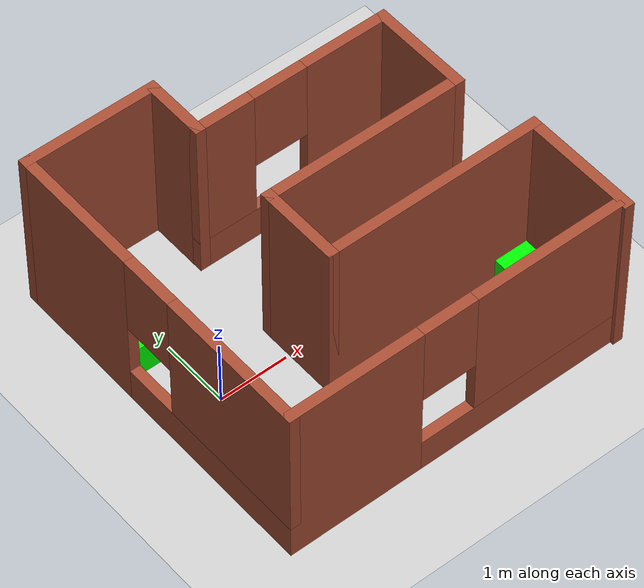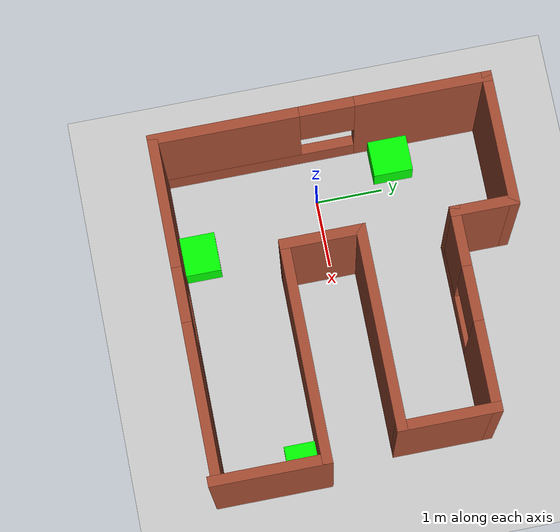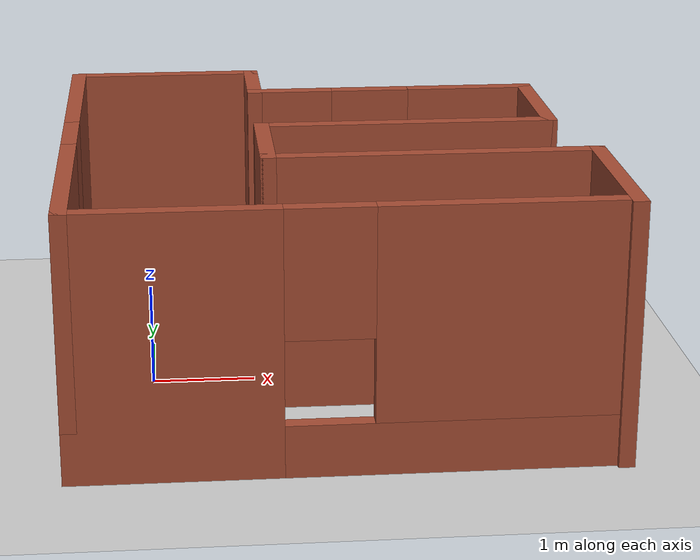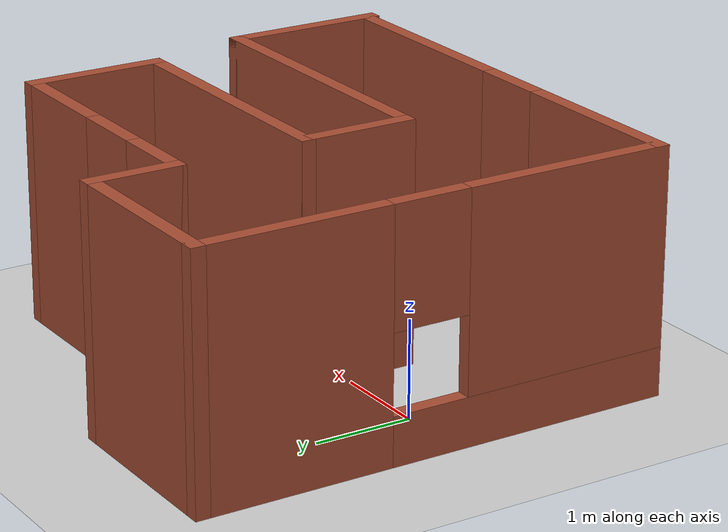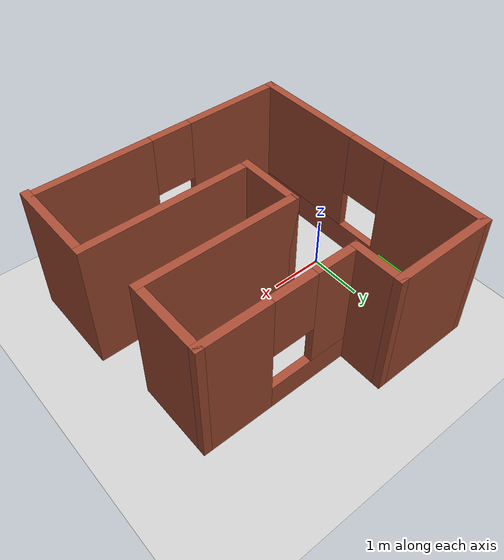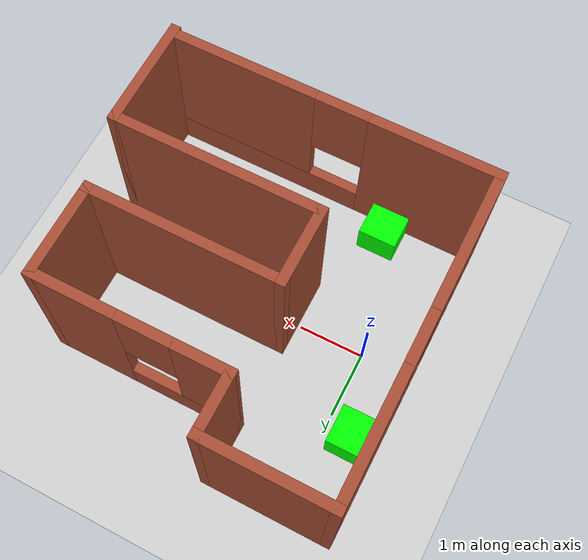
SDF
<sdf version="1.6">
 <world name="default">
  <light name="sun" type="directional">
   <pose>0 0 10 0 -0 0</pose>
   <diffuse>0.8 0.8 0.8 1</diffuse>
   <specular>0.2 0.2 0.2 1</specular>
   <attenuation>
    <range>1000</range>
    <constant>0.9</constant>
    <linear>0.01</linear>
    <quadratic>0.001</quadratic>
   </attenuation>
   <direction>-0.5 0.1 -0.9</direction>
   <spot><inner_angle>0</inner_angle><outer_angle>0</outer_angle><falloff>0</falloff></spot>
  </light>
  <model name="ground_plane">
   <static>1</static>
   <link name="link">
    <collision name="collision">
     <geometry><plane><normal>0 0 1</normal><size>100 100</size></plane></geometry>
     <surface><friction><ode><mu>100</mu><mu2>50</mu2></ode></friction></surface>
    </collision>
    <visual name="visual">
     <cast_shadows>0</cast_shadows>
     <geometry><plane><normal>0 0 1</normal><size>100 100</size></plane></geometry>
     <material>
      <script><uri>file://media/materials/scripts/gazebo.material</uri><name>Gazebo/Grey</name></script>
     </material>
    </visual>
   </link>
  </model>
  <gravity>0 0 -9.8</gravity>
  <magnetic_field>6e-06 2.3e-05 -4.2e-05</magnetic_field>
  <atmosphere type="adiabatic"/>
  <physics type="ode">
   <max_step_size>0.001</max_step_size>
   <real_time_factor>1</real_time_factor>
   <real_time_update_rate>1000</real_time_update_rate>
  </physics>
  <scene><ambient>0.4 0.4 0.4 1</ambient><background>0.7 0.7 0.7 1</background><shadows>1</shadows></scene>
  <audio><device>default</device></audio>
  <spherical_coordinates>
   <surface_model>EARTH_WGS84</surface_model>
   <latitude_deg>0</latitude_deg>
   <longitude_deg>0</longitude_deg>
   <elevation>0</elevation>
   <heading_deg>0</heading_deg>
  </spherical_coordinates>
  <model name="wall_path">
   <pose>1.74926 0.815969 0 0 -0 0</pose>
   <link name="Wall_0">
    <collision name="Wall_0_Collision">
     <geometry><box><size>3 0.15 2.5</size></box></geometry>
     <pose>0 0 1.25 0 -0 0</pose>
    </collision>
    <visual name="Wall_0_Visual">
     <pose>0 0 1.25 0 -0 0</pose>
     <geometry><box><size>3 0.15 2.5</size></box></geometry>
     <material>
      <script><uri>file://media/materials/scripts/gazebo.material</uri><name>Gazebo/Bricks</name></script>
      <ambient>1 1 1 1</ambient>
     </material>
     <meta><layer>0</layer></meta>
    </visual>
    <pose>0.8 -0.3875 0 0 -0 0</pose>
   </link>
   <link name="Wall_1">
    <collision name="Wall_1_Collision">
     <geometry><box><size>1.5 0.15 2.5</size></box></geometry>
     <pose>0 0 1.25 0 -0 0</pose>
    </collision>
    <visual name="Wall_1_Visual">
     <pose>0 0 1.25 0 -0 0</pose>
     <geometry><box><size>1.5 0.15 2.5</size></box></geometry>
     <material>
      <script><uri>file://media/materials/scripts/gazebo.material</uri><name>Gazebo/Bricks</name></script>
      <ambient>1 1 1 1</ambient>
     </material>
     <meta><layer>0</layer></meta>
    </visual>
    <pose>2.225 0.2875 0 0 -0 1.5708</pose>
   </link>
   <link name="Wall_10">
    <collision name="Wall_10_Collision">
     <geometry><box><size>1.25 0.15 2.5</size></box></geometry>
     <pose>0 0 1.25 0 -0 0</pose>
    </collision>
    <visual name="Wall_10_Visual">
     <pose>0 0 1.25 0 -0 0</pose>
     <geometry><box><size>1.25 0.15 2.5</size></box></geometry>
     <material>
      <script><uri>file://media/materials/scripts/gazebo.material</uri><name>Gazebo/Bricks</name></script>
      <ambient>1 1 1 1</ambient>
     </material>
     <meta><layer>0</layer></meta>
    </visual>
    <pose>-0.625 -0.9375 0 0 -0 -1.5708</pose>
   </link>
   <link name="Wall_11">
    <collision name="Wall_11_Collision">
     <geometry><box><size>3.25 0.15 2.5</size></box></geometry>
     <pose>0 0 1.25 0 -0 0</pose>
    </collision>
    <visual name="Wall_11_Visual">
     <pose>0 0 1.25 0 -0 0</pose>
     <geometry><box><size>3.25 0.15 2.5</size></box></geometry>
     <material>
      <script><uri>file://media/materials/scripts/gazebo.material</uri><name>Gazebo/Bricks</name></script>
      <ambient>1 1 1 1</ambient>
     </material>
     <meta><layer>0</layer></meta>
    </visual>
    <pose>0.925 -1.4875 0 0 -0 0</pose>
   </link>
   <link name="Wall_12">
    <collision name="Wall_12_Collision">
     <geometry><box><size>1.75 0.15 2.5</size></box></geometry>
     <pose>0 0 1.25 0 -0 0</pose>
    </collision>
    <visual name="Wall_12_Visual">
     <pose>0 0 1.25 0 -0 0</pose>
     <geometry><box><size>1.75 0.15 2.5</size></box></geometry>
     <material>
      <script><uri>file://media/materials/scripts/gazebo.material</uri><name>Gazebo/Bricks</name></script>
      <ambient>1 1 1 1</ambient>
     </material>
     <meta><layer>0</layer></meta>
    </visual>
    <pose>2.475 -2.2875 0 0 -0 -1.5708</pose>
   </link>
   <link name="Wall_2">
    <pose>0.8 0.9625 0 0 -0 3.14159</pose>
    <visual name="Wall_2_Visual_0">
     <pose>-0.840949 0 1.25 0 -0 0</pose>
     <geometry><box><size>1.3181 0.15 2.5</size></box></geometry>
     <material>
      <script><uri>file://media/materials/scripts/gazebo.material</uri><name>Gazebo/Bricks</name></script>
      <ambient>1 1 1 1</ambient>
     </material>
     <meta><layer>0</layer></meta>
    </visual>
    <collision name="Wall_2_Collision_0">
     <geometry><box><size>1.3181 0.15 2.5</size></box></geometry>
     <pose>-0.840949 0 1.25 0 -0 0</pose>
    </collision>
    <visual name="Wall_2_Visual_1">
     <pose>0.659051 0 0.25 0 -0 0</pose>
     <geometry><box><size>1.6819 0.15 0.5</size></box></geometry>
     <material>
      <script><uri>file://media/materials/scripts/gazebo.material</uri><name>Gazebo/Bricks</name></script>
      <ambient>1 1 1 1</ambient>
     </material>
     <meta><layer>0</layer></meta>
    </visual>
    <collision name="Wall_2_Collision_1">
     <geometry><box><size>1.6819 0.15 0.5</size></box></geometry>
     <pose>0.659051 0 0.25 0 -0 0</pose>
    </collision>
    <visual name="Wall_2_Visual_2">
     <pose>1.05905 0 1.5 0 -0 0</pose>
     <geometry><box><size>0.881897 0.15 2</size></box></geometry>
     <material>
      <script><uri>file://media/materials/scripts/gazebo.material</uri><name>Gazebo/Bricks</name></script>
      <ambient>1 1 1 1</ambient>
     </material>
     <meta><layer>0</layer></meta>
    </visual>
    <collision name="Wall_2_Collision_2">
     <geometry><box><size>0.881897 0.15 2</size></box></geometry>
     <pose>1.05905 0 1.5 0 -0 0</pose>
    </collision>
    <visual name="Wall_2_Visual_3">
     <pose>0.218103 0 1.9 0 -0 0</pose>
     <geometry><box><size>0.8 0.15 1.2</size></box></geometry>
     <material>
      <script><uri>file://media/materials/scripts/gazebo.material</uri><name>Gazebo/Bricks</name></script>
      <ambient>1 1 1 1</ambient>
     </material>
     <meta><layer>0</layer></meta>
    </visual>
    <collision name="Wall_2_Collision_3">
     <geometry><box><size>0.8 0.15 1.2</size></box></geometry>
     <pose>0.218103 0 1.9 0 -0 0</pose>
    </collision>
   </link>
   <link name="Wall_3">
    <collision name="Wall_3_Collision">
     <geometry><box><size>1 0.15 2.5</size></box></geometry>
     <pose>0 0 1.25 0 -0 0</pose>
    </collision>
    <visual name="Wall_3_Visual">
     <pose>0 0 1.25 0 -0 0</pose>
     <geometry><box><size>1 0.15 2.5</size></box></geometry>
     <material>
      <script><uri>file://media/materials/scripts/gazebo.material</uri><name>Gazebo/Bricks</name></script>
      <ambient>1 1 1 1</ambient>
     </material>
     <meta><layer>0</layer></meta>
    </visual>
    <pose>-0.625 1.3875 0 0 -0 1.5708</pose>
   </link>
   <link name="Wall_4">
    <collision name="Wall_4_Collision">
     <geometry><box><size>2 0.15 2.5</size></box></geometry>
     <pose>0 0 1.25 0 -0 0</pose>
    </collision>
    <visual name="Wall_4_Visual">
     <pose>0 0 1.25 0 -0 0</pose>
     <geometry><box><size>2 0.15 2.5</size></box></geometry>
     <material>
      <script><uri>file://media/materials/scripts/gazebo.material</uri><name>Gazebo/Bricks</name></script>
      <ambient>1 1 1 1</ambient>
     </material>
     <meta><layer>0</layer></meta>
    </visual>
    <pose>-1.55 1.8125 0 0 -0 3.14159</pose>
   </link>
   <link name="Wall_7">
    <pose>-2.475 -0.6125 0 0 -0 -1.5708</pose>
    <visual name="Wall_7_Visual_0">
     <pose>-1.49547 0 1.25 0 -0 0</pose>
     <geometry><box><size>2.00907 0.15 2.5</size></box></geometry>
     <material>
      <script><uri>file://media/materials/scripts/gazebo.material</uri><name>Gazebo/Bricks</name></script>
      <ambient>1 1 1 1</ambient>
     </material>
     <meta><layer>0</layer></meta>
    </visual>
    <collision name="Wall_7_Collision_0">
     <geometry><box><size>2.00907 0.15 2.5</size></box></geometry>
     <pose>-1.49547 0 1.25 0 -0 0</pose>
    </collision>
    <visual name="Wall_7_Visual_1">
     <pose>1.00453 0 0.25 0 -0 0</pose>
     <geometry><box><size>2.99093 0.15 0.5</size></box></geometry>
     <material>
      <script><uri>file://media/materials/scripts/gazebo.material</uri><name>Gazebo/Bricks</name></script>
      <ambient>1 1 1 1</ambient>
     </material>
     <meta><layer>0</layer></meta>
    </visual>
    <collision name="Wall_7_Collision_1">
     <geometry><box><size>2.99093 0.15 0.5</size></box></geometry>
     <pose>1.00453 0 0.25 0 -0 0</pose>
    </collision>
    <visual name="Wall_7_Visual_2">
     <pose>1.40454 0 1.5 0 -0 0</pose>
     <geometry><box><size>2.19093 0.15 2</size></box></geometry>
     <material>
      <script><uri>file://media/materials/scripts/gazebo.material</uri><name>Gazebo/Bricks</name></script>
      <ambient>1 1 1 1</ambient>
     </material>
     <meta><layer>0</layer></meta>
    </visual>
    <collision name="Wall_7_Collision_2">
     <geometry><box><size>2.19093 0.15 2</size></box></geometry>
     <pose>1.40454 0 1.5 0 -0 0</pose>
    </collision>
    <visual name="Wall_7_Visual_3">
     <pose>-0.090931 0 1.9 0 -0 0</pose>
     <geometry><box><size>0.8 0.15 1.2</size></box></geometry>
     <material>
      <script><uri>file://media/materials/scripts/gazebo.material</uri><name>Gazebo/Bricks</name></script>
      <ambient>1 1 1 1</ambient>
     </material>
     <meta><layer>0</layer></meta>
    </visual>
    <collision name="Wall_7_Collision_3">
     <geometry><box><size>0.8 0.15 1.2</size></box></geometry>
     <pose>-0.090931 0 1.9 0 -0 0</pose>
    </collision>
   </link>
   <link name="Wall_8">
    <pose>-0.05 -3.0375 0 0 -0 0</pose>
    <visual name="Wall_8_Visual_0">
     <pose>-1.51844 0 1.25 0 -0 0</pose>
     <geometry><box><size>1.96312 0.15 2.5</size></box></geometry>
     <material>
      <script><uri>file://media/materials/scripts/gazebo.material</uri><name>Gazebo/Bricks</name></script>
      <ambient>1 1 1 1</ambient>
     </material>
     <meta><layer>0</layer></meta>
    </visual>
    <collision name="Wall_8_Collision_0">
     <geometry><box><size>1.96312 0.15 2.5</size></box></geometry>
     <pose>-1.51844 0 1.25 0 -0 0</pose>
    </collision>
    <visual name="Wall_8_Visual_1">
     <pose>0.98156 0 0.25 0 -0 0</pose>
     <geometry><box><size>3.03688 0.15 0.5</size></box></geometry>
     <material>
      <script><uri>file://media/materials/scripts/gazebo.material</uri><name>Gazebo/Bricks</name></script>
      <ambient>1 1 1 1</ambient>
     </material>
     <meta><layer>0</layer></meta>
    </visual>
    <collision name="Wall_8_Collision_1">
     <geometry><box><size>3.03688 0.15 0.5</size></box></geometry>
     <pose>0.98156 0 0.25 0 -0 0</pose>
    </collision>
    <visual name="Wall_8_Visual_2">
     <pose>1.38156 0 1.5 0 -0 0</pose>
     <geometry><box><size>2.23688 0.15 2</size></box></geometry>
     <material>
      <script><uri>file://media/materials/scripts/gazebo.material</uri><name>Gazebo/Bricks</name></script>
      <ambient>1 1 1 1</ambient>
     </material>
     <meta><layer>0</layer></meta>
    </visual>
    <collision name="Wall_8_Collision_2">
     <geometry><box><size>2.23688 0.15 2</size></box></geometry>
     <pose>1.38156 0 1.5 0 -0 0</pose>
    </collision>
    <visual name="Wall_8_Visual_3">
     <pose>-0.136881 0 1.9 0 -0 0</pose>
     <geometry><box><size>0.8 0.15 1.2</size></box></geometry>
     <material>
      <script><uri>file://media/materials/scripts/gazebo.material</uri><name>Gazebo/Bricks</name></script>
      <ambient>1 1 1 1</ambient>
     </material>
     <meta><layer>0</layer></meta>
    </visual>
    <collision name="Wall_8_Collision_3">
     <geometry><box><size>0.8 0.15 1.2</size></box></geometry>
     <pose>-0.136881 0 1.9 0 -0 0</pose>
    </collision>
   </link>
   <static>1</static>
  </model>
  <model name="boxes">
   <link name="link_0">
    <inertial>
     <mass>0.189163</mass>
     <inertia>
      <ixx>0.0101824</ixx>
      <ixy>0</ixy>
      <ixz>0</ixz>
      <iyy>0.0101591</iyy>
      <iyz>0</iyz>
      <izz>0.0108917</izz>
     </inertia>
    </inertial>
    <pose>-1.77269 1.74256 0 0 -0 0</pose>
    <visual name="visual">
     <geometry><box><size>0.587139 0.588394 0.547481</size></box></geometry>
     <material>
      <lighting>1</lighting>
      <script><uri>file://media/materials/scripts/gazebo.material</uri><name>Gazebo/Grey</name></script>
      <shader type="pixel"><normal_map>__default__</normal_map></shader>
      <ambient>0 1 0 0</ambient>
      <diffuse>0.7 0.7 0.7 1</diffuse>
      <specular>0.01 0.01 0.01 1</specular>
      <emissive>0 0 0 1</emissive>
     </material>
    </visual>
    <collision name="collision">
     <geometry><box><size>0.587139 0.588394 0.547481</size></box></geometry>
     <surface>
      <friction>
       <ode><mu>1</mu><mu2>1</mu2><fdir1>0 0 0</fdir1><slip1>0</slip1><slip2>0</slip2></ode>
       <torsional>
        <coefficient>1</coefficient>
        <patch_radius>0</patch_radius>
        <surface_radius>0</surface_radius>
        <use_patch_radius>1</use_patch_radius>
        <ode><slip>0</slip></ode>
       </torsional>
      </friction>
      <bounce><restitution_coefficient>0</restitution_coefficient><threshold>1e+06</threshold></bounce>
      <contact>
       <collide_without_contact>0</collide_without_contact>
       <collide_without_contact_bitmask>1</collide_without_contact_bitmask>
       <collide_bitmask>1</collide_bitmask>
       <ode>
        <soft_cfm>0</soft_cfm>
        <soft_erp>0.2</soft_erp>
        <kp>1e+13</kp>
        <kd>1</kd>
        <max_vel>0.01</max_vel>
        <min_depth>0</min_depth>
       </ode>
       <bullet>
        <split_impulse>1</split_impulse>
        <split_impulse_penetration_threshold>-0.01</split_impulse_penetration_threshold>
        <soft_cfm>0</soft_cfm>
        <soft_erp>0.2</soft_erp>
        <kp>1e+13</kp>
        <kd>1</kd>
       </bullet>
      </contact>
     </surface>
    </collision>
   </link>
   <link name="link_0_clone">
    <inertial>
     <mass>0.189163</mass>
     <inertia>
      <ixx>0.0101824</ixx>
      <ixy>0</ixy>
      <ixz>0</ixz>
      <iyy>0.0101591</iyy>
      <iyz>0</iyz>
      <izz>0.0108917</izz>
     </inertia>
    </inertial>
    <pose>-0.803832 -1.36887 0 0 -0 0</pose>
    <visual name="visual">
     <geometry><box><size>0.587139 0.588394 0.547481</size></box></geometry>
     <material>
      <lighting>1</lighting>
      <script><uri>file://media/materials/scripts/gazebo.material</uri><name>Gazebo/Grey</name></script>
      <shader type="pixel"><normal_map>__default__</normal_map></shader>
      <ambient>0 1 0 0</ambient>
      <diffuse>0.7 0.7 0.7 1</diffuse>
      <specular>0.01 0.01 0.01 1</specular>
      <emissive>0 0 0 1</emissive>
     </material>
    </visual>
    <collision name="collision">
     <geometry><box><size>0.587139 0.588394 0.547481</size></box></geometry>
     <surface>
      <friction>
       <ode><mu>1</mu><mu2>1</mu2><fdir1>0 0 0</fdir1><slip1>0</slip1><slip2>0</slip2></ode>
       <torsional>
        <coefficient>1</coefficient>
        <patch_radius>0</patch_radius>
        <surface_radius>0</surface_radius>
        <use_patch_radius>1</use_patch_radius>
        <ode><slip>0</slip></ode>
       </torsional>
      </friction>
      <bounce><restitution_coefficient>0</restitution_coefficient><threshold>1e+06</threshold></bounce>
      <contact>
       <collide_without_contact>0</collide_without_contact>
       <collide_without_contact_bitmask>1</collide_without_contact_bitmask>
       <collide_bitmask>1</collide_bitmask>
       <ode>
        <soft_cfm>0</soft_cfm>
        <soft_erp>0.2</soft_erp>
        <kp>1e+13</kp>
        <kd>1</kd>
        <max_vel>0.01</max_vel>
        <min_depth>0</min_depth>
       </ode>
       <bullet>
        <split_impulse>1</split_impulse>
        <split_impulse_penetration_threshold>-0.01</split_impulse_penetration_threshold>
        <soft_cfm>0</soft_cfm>
        <soft_erp>0.2</soft_erp>
        <kp>1e+13</kp>
        <kd>1</kd>
       </bullet>
      </contact>
     </surface>
    </collision>
   </link>
   <link name="link_0_clone_0">
    <inertial>
     <mass>0.189163</mass>
     <inertia>
      <ixx>0.0101824</ixx>
      <ixy>0</ixy>
      <ixz>0</ixz>
      <iyy>0.0101591</iyy>
      <iyz>0</iyz>
      <izz>0.0108917</izz>
     </inertia>
    </inertial>
    <pose>2.57653 -0.3737 0 0 -0 0</pose>
    <visual name="visual">
     <geometry><box><size>0.587139 0.588394 0.547481</size></box></geometry>
     <material>
      <lighting>1</lighting>
      <script><uri>file://media/materials/scripts/gazebo.material</uri><name>Gazebo/Grey</name></script>
      <shader type="pixel"><normal_map>__default__</normal_map></shader>
      <ambient>0 1 0 0</ambient>
      <diffuse>0.7 0.7 0.7 1</diffuse>
      <specular>0.01 0.01 0.01 1</specular>
      <emissive>0 0 0 1</emissive>
     </material>
    </visual>
    <collision name="collision">
     <geometry><box><size>0.587139 0.588394 0.547481</size></box></geometry>
     <surface>
      <friction>
       <ode><mu>1</mu><mu2>1</mu2><fdir1>0 0 0</fdir1><slip1>0</slip1><slip2>0</slip2></ode>
       <torsional>
        <coefficient>1</coefficient>
        <patch_radius>0</patch_radius>
        <surface_radius>0</surface_radius>
        <use_patch_radius>1</use_patch_radius>
        <ode><slip>0</slip></ode>
       </torsional>
      </friction>
      <bounce><restitution_coefficient>0</restitution_coefficient><threshold>1e+06</threshold></bounce>
      <contact>
       <collide_without_contact>0</collide_without_contact>
       <collide_without_contact_bitmask>1</collide_without_contact_bitmask>
       <collide_bitmask>1</collide_bitmask>
       <ode>
        <soft_cfm>0</soft_cfm>
        <soft_erp>0.2</soft_erp>
        <kp>1e+13</kp>
        <kd>1</kd>
        <max_vel>0.01</max_vel>
        <min_depth>0</min_depth>
       </ode>
       <bullet>
        <split_impulse>1</split_impulse>
        <split_impulse_penetration_threshold>-0.01</split_impulse_penetration_threshold>
        <soft_cfm>0</soft_cfm>
        <soft_erp>0.2</soft_erp>
        <kp>1e+13</kp>
        <kd>1</kd>
       </bullet>
      </contact>
     </surface>
    </collision>
   </link>
   <static>0</static>
   <pose>1.36587 -0.542435 0.206183 0 -0 0</pose>
  </model>
 </world>
</sdf>
